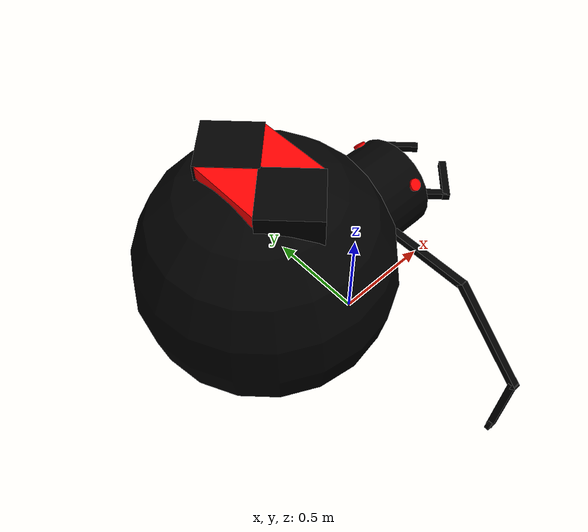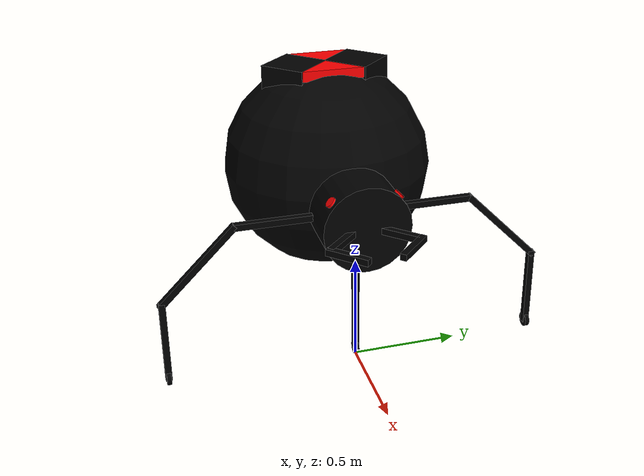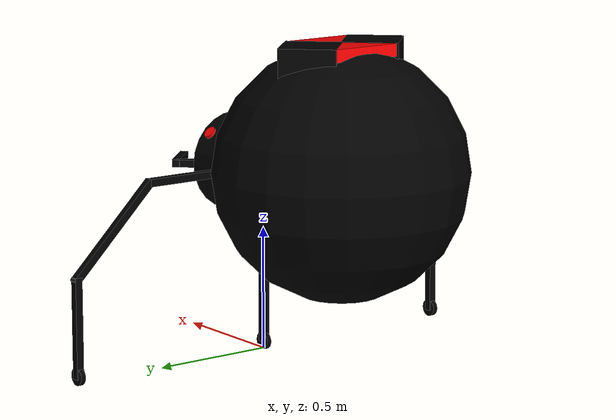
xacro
<?xml version="1.0"?>
<robot name="spider_bot" xmlns:xacro="http://ros.org/wiki/xacro">

  <xacro:property name="wheeldiam" value="0.07" />

  <material name="black">
    <color rgba="0 0 0 1"/>
  </material>

  <material name="red">
    <color rgba="1 0 0 1"/>
  </material>

  <material name="blue">
    <color rgba="0 0 1 1"/>
  </material>

  <link name="body_neck">
    <visual>
    <origin xyz="0 0 0.25" rpy="${pi/2} 0 0"/>
      <geometry>
        <cylinder length="0.4" radius="0.2"/>
      </geometry>
    <material name="black"/>
    </visual>
  </link>

  <link name="body_round">
    <visual>
      <geometry>
        <sphere radius="0.5"/>
      </geometry>
    <material name="black"/>
    </visual>
  </link>

  <joint name="neck_body" type="fixed">
    <origin xyz="0 -0.5 0.3" rpy="0 0 0"/>
    <parent link="body_neck"/>
    <child link="body_round"/>
  </joint>

  <link name="back_signet">
    <visual>
      <geometry>
        <box size="0.3 0.3 0.05"/>
      </geometry>
    <material name="red"/>
    </visual>
  </link>

  <joint name="signet_1" type="fixed">
    <origin xyz="0 0 0.48" rpy="0 0 0"/>
    <parent link="body_round"/>
    <child link="back_signet"/>
  </joint>

  <link name="back_box_1">
    <visual>
      <geometry>
        <box size="0.22 0.22 0.13"/>
      </geometry>
    <material name="black"/>
    </visual>
  </link>

  <joint name="signet_cover_1" type="fixed">
    <origin xyz="0.15 0 -0.039" rpy="0 0 ${pi/4}"/>
    <parent link="back_signet"/>
    <child link="back_box_1"/>
  </joint>

  <link name="back_box_2">
    <visual>
      <geometry>
        <box size="0.22 0.22 0.13"/>
      </geometry>
    <material name="black"/>
    </visual>
  </link>

  <joint name="signet_cover_2" type="fixed">
    <origin xyz="-0.15 0 -0.039" rpy="0 0 ${pi/4}"/>
    <parent link="back_signet"/>
    <child link="back_box_2"/>
  </joint>

  <link name="leg_1">
    <visual>
      <geometry>
        <box size="0.5 0.03 0.03"/>
      </geometry>
    <material name="black"/>
    </visual>
  </link>

  <joint name="leg_1_joint" type="fixed">
    <origin xyz="-0.3 0 0.25" rpy="0 0 ${pi}"/>
    <parent link="body_neck"/>
    <child link="leg_1"/>
  </joint>

  <link name="foot_1">
    <visual>
      <geometry>
        <box size="0.5 0.03 0.03"/>
      </geometry>
    <material name="black"/>
    </visual>
  </link>

  <joint name="leg_to_foot_1" type="fixed">
    <origin xyz="0.42 0 -0.17" rpy="0 -${pi/4} ${pi}"/>
    <parent link="leg_1"/>
    <child link="foot_1"/>
  </joint>

  <link name="foot_final_1">
    <visual>
      <geometry>
        <box size="0.4 0.03 0.03"/>
      </geometry>
    <material name="black"/>
    </visual>
  </link>

  <joint name="foot_final_joint_1" type="fixed">
    <origin xyz="-0.37 0 -0.135" rpy="0 ${pi/4} ${pi}"/>
    <parent link="foot_1"/>
    <child link="foot_final_1"/>
  </joint>

  <link name="wheel_1">
    <visual>
      <origin rpy="0 -${pi/2} 0"/>
      <geometry>
        <cylinder radius="${wheeldiam/2}" length="0.02"/>
      </geometry>
      <material name="black"/>
    </visual>
  </link>

  <joint name="wheel_joint_1" type="continuous">
    <parent link="foot_final_1"/>
    <child link="wheel_1"/>
    <origin xyz="0.19 0 0" rpy="0 ${pi/2} -${pi}"/>
  </joint>

  <link name="leg_2">
    <visual>
      <geometry>
        <box size="0.5 0.03 0.03"/>
      </geometry>
    <material name="black"/>
    </visual>
  </link>

  <joint name="leg_2_joint" type="fixed">
    <origin xyz="0.3 0 0.25" rpy="0 0 ${pi}"/>
    <parent link="body_neck"/>
    <child link="leg_2"/>
  </joint>

  <link name="foot_2">
    <visual>
      <geometry>
        <box size="0.5 0.03 0.03"/>
      </geometry>
    <material name="black"/>
    </visual>
  </link>

  <joint name="leg_to_foot_2" type="fixed">
    <origin xyz="-0.42 0 -0.17" rpy="0 ${pi/4} ${pi}"/>
    <parent link="leg_2"/>
    <child link="foot_2"/>
  </joint>

  <link name="foot_final_2">
    <visual>
      <geometry>
        <box size="0.4 0.03 0.03"/>
      </geometry>
    <material name="black"/>
    </visual>
  </link>

  <joint name="foot_final_joint_2" type="fixed">
    <origin xyz="0.37 0 -0.135" rpy="0 -${pi/4} ${pi}"/>
    <parent link="foot_2"/>
    <child link="foot_final_2"/>
  </joint>

  <link name="wheel_2">
    <visual>
    <origin rpy="0 -${pi/2} 0"/>
      <geometry>
        <cylinder radius="${wheeldiam/2}" length="0.02"/>
      </geometry>
      <material name="black"/>
    </visual>
  </link>

  <joint name="wheel_joint_2" type="continuous">
    <parent link="foot_final_2"/>
    <child link="wheel_2"/>
    <origin xyz="-0.19 0 0" rpy="0 -${pi/2} -${pi}"/>
  </joint>

  <link name="leg_3">
    <visual>
      <geometry>
        <box size="0.8 0.03 0.03"/>
      </geometry>
    <material name="black"/>
    </visual>
  </link>

  <joint name="leg_3_joint" type="fixed">
    <origin xyz="0 0 -0.068" rpy="0 ${pi/2} 0"/>
    <parent link="body_neck"/>
    <child link="leg_3"/>
  </joint>

  <link name="wheel_3">
    <visual>
    <origin rpy="0 -${pi/2} 0"/>
      <geometry>
        <cylinder radius="${wheeldiam/2}" length="0.02"/>
      </geometry>
      <material name="black"/>
    </visual>
  </link>

  <joint name="wheel_joint_3" type="continuous">
    <parent link="leg_3"/>
    <child link="wheel_3"/>
    <origin xyz="0.4 0 0" rpy="${pi} -${pi/2} -${pi}"/>
  </joint>

  <link name="eye_1">
    <visual>
      <geometry>
        <cylinder radius="0.025" length="0.02"/>
      </geometry>
      <material name="red"/>
    </visual>
  </link>

  <joint name="eye_1_to_face" type="fixed">
    <origin xyz="0.15 0.15 0.38" rpy="-${pi/4} 0 -${pi/2}"/>
    <parent link="body_neck"/>
    <child link="eye_1"/>
  </joint>

  <link name="eye_2">
    <visual>
      <geometry>
        <cylinder radius="0.025" length="0.02"/>
      </geometry>
      <material name="red"/>
    </visual>
  </link>

  <joint name="eye_2_to_face" type="fixed">
    <origin xyz="-0.15 0.15 0.38" rpy="-${pi/4} 0 ${pi/2}"/>
    <parent link="body_neck"/>
    <child link="eye_2"/>
  </joint>

  <link name="eater_1">
    <visual>
      <geometry>
        <box size="0.2 0.03 0.03"/>
      </geometry>
    <material name="black"/>
    </visual>
  </link>

  <joint name="eater_1_joint" type="fixed">
    <origin xyz="-0.13 0.25 0.24" rpy="0 0 -${pi/4}"/>
    <parent link="body_neck"/>
    <child link="eater_1"/>
  </joint>

  <link name="mouth_1">
    <visual>
      <geometry>
        <box size="0.2 0.03 0.03"/>
      </geometry>
    <material name="black"/>
    </visual>
  </link>

  <joint name="eater_mouth_1" type="fixed">
    <origin xyz="-0.1 0.083 0" rpy="0 0 -${pi/2}"/>
    <parent link="eater_1"/>
    <child link="mouth_1"/>
  </joint>

  <link name="eater_2">
    <visual>
      <geometry>
        <box size="0.2 0.03 0.03"/>
      </geometry>
    <material name="black"/>
    </visual>
  </link>

  <joint name="eater_2_joint" type="fixed">
    <origin xyz="0.13 0.25 0.24" rpy="0 0 ${pi/4}"/>
    <parent link="body_neck"/>
    <child link="eater_2"/>
  </joint>

  <link name="mouth_2">
    <visual>
      <geometry>
        <box size="0.2 0.03 0.03"/>
      </geometry>
    <material name="black"/>
    </visual>
  </link>

  <joint name="eater_mouth_2" type="fixed">
    <origin xyz="0.1 0.083 0" rpy="0 0 -${pi/2}"/>
    <parent link="eater_2"/>
    <child link="mouth_2"/>
  </joint>

  <link name="base_footprint">
  </link>

  <joint name="base_footprint_to_link" type="fixed">
    <origin rpy="0 0 -${pi/2}" xyz="0 0 0.5"/>
    <parent link="base_footprint"/>
    <child link="body_neck"/>
  </joint>

</robot>
